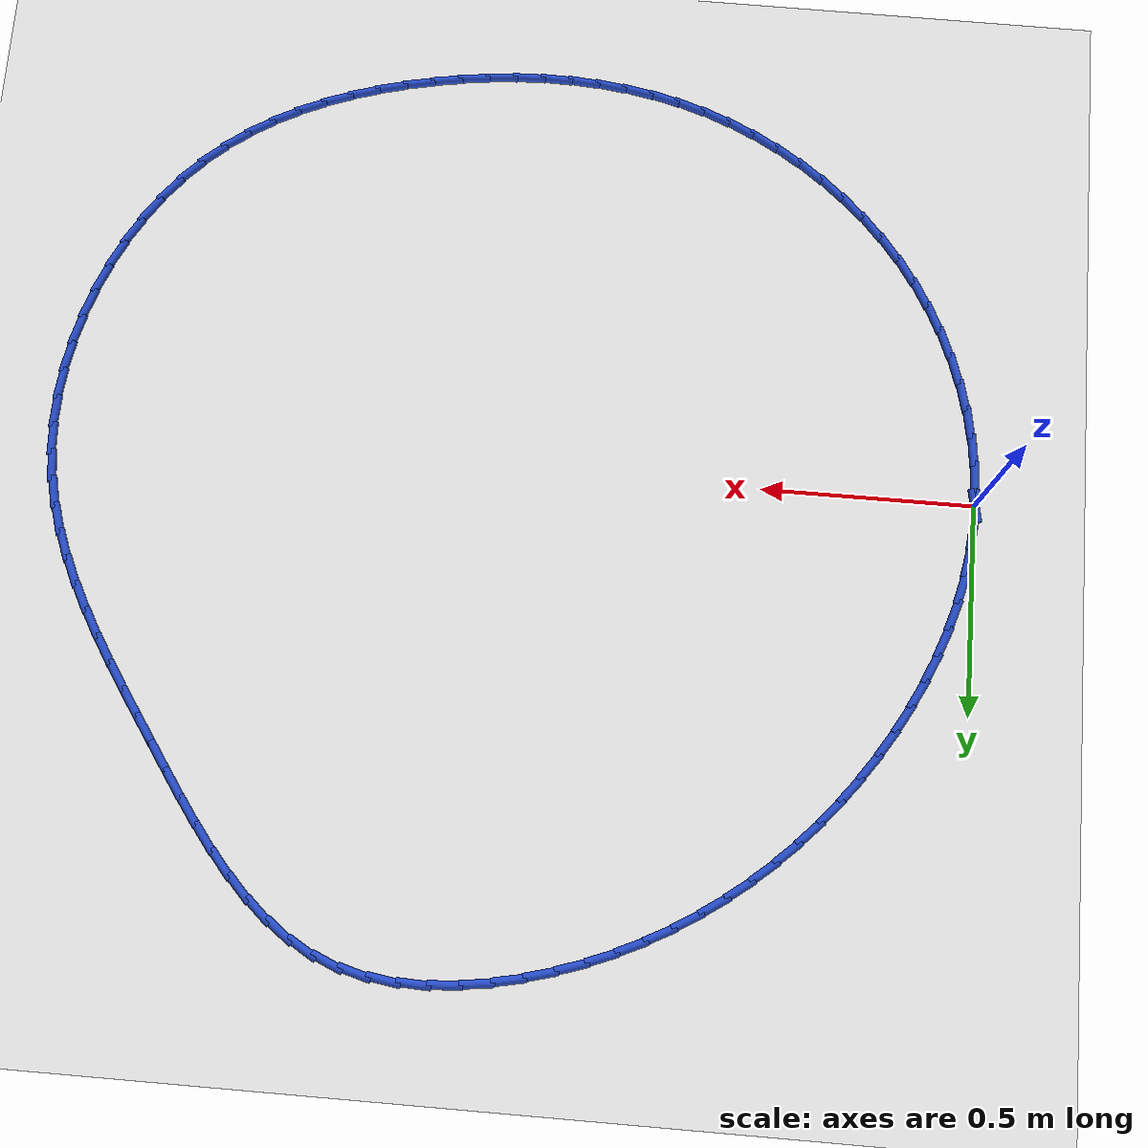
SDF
<sdf version="1.6">
 <world name="default">
  <light name="sun" type="directional">
   <pose>0 0 10 0 -0 0</pose>
   <diffuse>0.8 0.8 0.8 1</diffuse>
   <specular>0.2 0.2 0.2 1</specular>
   <attenuation>
    <range>1000</range>
    <constant>0.9</constant>
    <linear>0.01</linear>
    <quadratic>0.001</quadratic>
   </attenuation>
   <direction>-0.5 0.1 -0.9</direction>
  </light>
  <model name="ground_plane">
   <static>1</static>
   <link name="link">
    <collision name="collision">
     <geometry><plane><normal>0 0 1</normal><size>100 100</size></plane></geometry>
     <surface><friction><ode><mu>100</mu><mu2>50</mu2></ode></friction></surface>
    </collision>
    <visual name="visual">
     <cast_shadows>0</cast_shadows>
     <geometry><plane><normal>0 0 1</normal><size>100 100</size></plane></geometry>
     <material>
      <script><uri>file://media/materials/scripts/gazebo.material</uri><name>Gazebo/WhiteGlow</name></script>
     </material>
    </visual>
   </link>
  </model>
  <gravity>0 0 -9.8</gravity>
  <magnetic_field>6e-06 2.3e-05 -4.2e-05</magnetic_field>
  <atmosphere type="adiabatic"/>
  <physics name="default_physics" default="0" type="ode">
   <max_step_size>0.001</max_step_size>
   <real_time_factor>1</real_time_factor>
   <real_time_update_rate>1000</real_time_update_rate>
  </physics>
  <scene><ambient>0.4 0.4 0.4 1</ambient><background>0.7 0.7 0.7 1</background><shadows>1</shadows></scene>
  <spherical_coordinates>
   <surface_model>EARTH_WGS84</surface_model>
   <latitude_deg>0</latitude_deg>
   <longitude_deg>0</longitude_deg>
   <elevation>0</elevation>
   <heading_deg>0</heading_deg>
  </spherical_coordinates>
  <model name="line">
   <link name="link_0">
    <pose>4.163336342344337e-17 2.7755575615628914e-17 0.01 0 1.57 1.5192214932121693</pose>
    <collision name="collision">
     <geometry><cylinder><radius>0.01</radius><length>0.08</length></cylinder></geometry>
    </collision>
    <visual name="visual">
     <material>
      <script><name>Gazebo/Blue</name><uri>file://media/materials/scripts/gazebo.material</uri></script>
     </material>
     <geometry><cylinder><radius>0.01</radius><length>0.08</length></cylinder></geometry>
    </visual>
   </link>
   <link name="link_1">
    <pose>0.0034762063375712105 0.06734144069216903 0.01 0 1.57 1.4469908983931952</pose>
    <collision name="collision">
     <geometry><cylinder><radius>0.01</radius><length>0.08</length></cylinder></geometry>
    </collision>
    <visual name="visual">
     <material>
      <script><name>Gazebo/Blue</name><uri>file://media/materials/scripts/gazebo.material</uri></script>
     </material>
     <geometry><cylinder><radius>0.01</radius><length>0.08</length></cylinder></geometry>
    </visual>
   </link>
   <link name="link_2">
    <pose>0.011801521209621156 0.13424266820748448 0.01 0 1.57 1.3785168882773868</pose>
    <collision name="collision">
     <geometry><cylinder><radius>0.01</radius><length>0.08</length></cylinder></geometry>
    </collision>
    <visual name="visual">
     <material>
      <script><name>Gazebo/Blue</name><uri>file://media/materials/scripts/gazebo.material</uri></script>
     </material>
     <geometry><cylinder><radius>0.01</radius><length>0.08</length></cylinder></geometry>
    </visual>
   </link>
   <link name="link_3">
    <pose>0.02470611680292217 0.20052728369750927 0.01 0 1.57 1.3137665823519877</pose>
    <collision name="collision">
     <geometry><cylinder><radius>0.01</radius><length>0.08</length></cylinder></geometry>
    </collision>
    <visual name="visual">
     <material>
      <script><name>Gazebo/Blue</name><uri>file://media/materials/scripts/gazebo.material</uri></script>
     </material>
     <geometry><cylinder><radius>0.01</radius><length>0.08</length></cylinder></geometry>
    </visual>
   </link>
   <link name="link_4">
    <pose>0.041920165304246575 0.26601888831380677 0.01 0 1.57 1.2525890644805597</pose>
    <collision name="collision">
     <geometry><cylinder><radius>0.01</radius><length>0.08</length></cylinder></geometry>
    </collision>
    <visual name="visual">
     <material>
      <script><name>Gazebo/Blue</name><uri>file://media/materials/scripts/gazebo.material</uri></script>
     </material>
     <geometry><cylinder><radius>0.01</radius><length>0.08</length></cylinder></geometry>
    </visual>
   </link>
   <link name="link_5">
    <pose>0.06317383890036667 0.3305410832079398 0.01 0 1.57 1.1947469645104771</pose>
    <collision name="collision">
     <geometry><cylinder><radius>0.01</radius><length>0.08</length></cylinder></geometry>
    </collision>
    <visual name="visual">
     <material>
      <script><name>Gazebo/Blue</name><uri>file://media/materials/scripts/gazebo.material</uri></script>
     </material>
     <geometry><cylinder><radius>0.01</radius><length>0.08</length></cylinder></geometry>
    </visual>
   </link>
   <link name="link_6">
    <pose>0.08819730977805473 0.3939174695314717 0.01 0 1.57 1.1399433454438057</pose>
    <collision name="collision">
     <geometry><cylinder><radius>0.01</radius><length>0.08</length></cylinder></geometry>
    </collision>
    <visual name="visual">
     <material>
      <script><name>Gazebo/Blue</name><uri>file://media/materials/scripts/gazebo.material</uri></script>
     </material>
     <geometry><cylinder><radius>0.01</radius><length>0.08</length></cylinder></geometry>
    </visual>
   </link>
   <link name="link_7">
    <pose>0.11672075012408317 0.4559716484359657 0.01 0 1.57 1.087842598606835</pose>
    <collision name="collision">
     <geometry><cylinder><radius>0.01</radius><length>0.08</length></cylinder></geometry>
    </collision>
    <visual name="visual">
     <material>
      <script><name>Gazebo/Blue</name><uri>file://media/materials/scripts/gazebo.material</uri></script>
     </material>
     <geometry><cylinder><radius>0.01</radius><length>0.08</length></cylinder></geometry>
    </visual>
   </link>
   <link name="link_8">
    <pose>0.14847433212522418 0.5165272210729847 0.01 0 1.57 1.0380852814231114</pose>
    <collision name="collision">
     <geometry><cylinder><radius>0.01</radius><length>0.08</length></cylinder></geometry>
    </collision>
    <visual name="visual">
     <material>
      <script><name>Gazebo/Blue</name><uri>file://media/materials/scripts/gazebo.material</uri></script>
     </material>
     <geometry><cylinder><radius>0.01</radius><length>0.08</length></cylinder></geometry>
    </visual>
   </link>
   <link name="link_9">
    <pose>0.1831882279682501 0.5754077885940918 0.01 0 1.57 0.9901184920248248</pose>
    <collision name="collision">
     <geometry><cylinder><radius>0.01</radius><length>0.08</length></cylinder></geometry>
    </collision>
    <visual name="visual">
     <material>
      <script><name>Gazebo/Blue</name><uri>file://media/materials/scripts/gazebo.material</uri></script>
     </material>
     <geometry><cylinder><radius>0.01</radius><length>0.08</length></cylinder></geometry>
    </visual>
   </link>
   <link name="link_10">
    <pose>0.22061028343473135 0.6324416354173774 0.01 0 1.57 0.9422704575083368</pose>
    <collision name="collision">
     <geometry><cylinder><radius>0.01</radius><length>0.08</length></cylinder></geometry>
    </collision>
    <visual name="visual">
     <material>
      <script><name>Gazebo/Blue</name><uri>file://media/materials/scripts/gazebo.material</uri></script>
     </material>
     <geometry><cylinder><radius>0.01</radius><length>0.08</length></cylinder></geometry>
    </visual>
   </link>
   <link name="link_11">
    <pose>0.2606250873971751 0.6874932810533351 0.01 0 1.57 0.8938113492299037</pose>
    <collision name="collision">
     <geometry><cylinder><radius>0.01</radius><length>0.08</length></cylinder></geometry>
    </collision>
    <visual name="visual">
     <material>
      <script><name>Gazebo/Blue</name><uri>file://media/materials/scripts/gazebo.material</uri></script>
     </material>
     <geometry><cylinder><radius>0.01</radius><length>0.08</length></cylinder></geometry>
    </visual>
   </link>
   <link name="link_12">
    <pose>0.3031809986056713 0.7404441431781414 0.01 0 1.57 0.8446939364812358</pose>
    <collision name="collision">
     <geometry><cylinder><radius>0.01</radius><length>0.08</length></cylinder></geometry>
    </collision>
    <visual name="visual">
     <material>
      <script><name>Gazebo/Blue</name><uri>file://media/materials/scripts/gazebo.material</uri></script>
     </material>
     <geometry><cylinder><radius>0.01</radius><length>0.08</length></cylinder></geometry>
    </visual>
   </link>
   <link name="link_13">
    <pose>0.3482267337803214 0.791175734325245 0.01 0 1.57 0.7948844744198705</pose>
    <collision name="collision">
     <geometry><cylinder><radius>0.01</radius><length>0.08</length></cylinder></geometry>
    </collision>
    <visual name="visual">
     <material>
      <script><name>Gazebo/Blue</name><uri>file://media/materials/scripts/gazebo.material</uri></script>
     </material>
     <geometry><cylinder><radius>0.01</radius><length>0.08</length></cylinder></geometry>
    </visual>
   </link>
   <link name="link_14">
    <pose>0.3957110096412262 0.8395695670280936 0.01 0 1.57 0.7443609646239293</pose>
    <collision name="collision">
     <geometry><cylinder><radius>0.01</radius><length>0.08</length></cylinder></geometry>
    </collision>
    <visual name="visual">
     <material>
      <script><name>Gazebo/Blue</name><uri>file://media/materials/scripts/gazebo.material</uri></script>
     </material>
     <geometry><cylinder><radius>0.01</radius><length>0.08</length></cylinder></geometry>
    </visual>
   </link>
   <link name="link_15">
    <pose>0.4455825429084865 0.8855071538201349 0.01 0 1.57 0.6931150319555096</pose>
    <collision name="collision">
     <geometry><cylinder><radius>0.01</radius><length>0.08</length></cylinder></geometry>
    </collision>
    <visual name="visual">
     <material>
      <script><name>Gazebo/Blue</name><uri>file://media/materials/scripts/gazebo.material</uri></script>
     </material>
     <geometry><cylinder><radius>0.01</radius><length>0.08</length></cylinder></geometry>
    </visual>
   </link>
   <link name="link_16">
    <pose>0.4977900503022036 0.9288700072348176 0.01 0 1.57 0.6411537107322413</pose>
    <collision name="collision">
     <geometry><cylinder><radius>0.01</radius><length>0.08</length></cylinder></geometry>
    </collision>
    <visual name="visual">
     <material>
      <script><name>Gazebo/Blue</name><uri>file://media/materials/scripts/gazebo.material</uri></script>
     </material>
     <geometry><cylinder><radius>0.01</radius><length>0.08</length></cylinder></geometry>
    </visual>
   </link>
   <link name="link_17">
    <pose>0.5522822485424786 0.9695396398055895 0.01 0 1.57 0.5885010371077563</pose>
    <collision name="collision">
     <geometry><cylinder><radius>0.01</radius><length>0.08</length></cylinder></geometry>
    </collision>
    <visual name="visual">
     <material>
      <script><name>Gazebo/Blue</name><uri>file://media/materials/scripts/gazebo.material</uri></script>
     </material>
     <geometry><cylinder><radius>0.01</radius><length>0.08</length></cylinder></geometry>
    </visual>
   </link>
   <link name="link_18">
    <pose>0.609007854349412 1.007397564065898 0.01 0 1.57 0.5351993276121104</pose>
    <collision name="collision">
     <geometry><cylinder><radius>0.01</radius><length>0.08</length></cylinder></geometry>
    </collision>
    <visual name="visual">
     <material>
      <script><name>Gazebo/Blue</name><uri>file://media/materials/scripts/gazebo.material</uri></script>
     </material>
     <geometry><cylinder><radius>0.01</radius><length>0.08</length></cylinder></geometry>
    </visual>
   </link>
   <link name="link_19">
    <pose>0.6679155844431053 1.042325292549192 0.01 0 1.57 0.4813100142860776</pose>
    <collision name="collision">
     <geometry><cylinder><radius>0.01</radius><length>0.08</length></cylinder></geometry>
    </collision>
    <visual name="visual">
     <material>
      <script><name>Gazebo/Blue</name><uri>file://media/materials/scripts/gazebo.material</uri></script>
     </material>
     <geometry><cylinder><radius>0.01</radius><length>0.08</length></cylinder></geometry>
    </visual>
   </link>
   <link name="link_20">
    <pose>0.7289541555436594 1.074204337788919 0.01 0 1.57 0.42691390855210354</pose>
    <collision name="collision">
     <geometry><cylinder><radius>0.01</radius><length>0.08</length></cylinder></geometry>
    </collision>
    <visual name="visual">
     <material>
      <script><name>Gazebo/Blue</name><uri>file://media/materials/scripts/gazebo.material</uri></script>
     </material>
     <geometry><cylinder><radius>0.01</radius><length>0.08</length></cylinder></geometry>
    </visual>
   </link>
   <link name="link_21">
    <pose>0.7920722843711752 1.102916212318527 0.01 0 1.57 0.37211078216397037</pose>
    <collision name="collision">
     <geometry><cylinder><radius>0.01</radius><length>0.08</length></cylinder></geometry>
    </collision>
    <visual name="visual">
     <material>
      <script><name>Gazebo/Blue</name><uri>file://media/materials/scripts/gazebo.material</uri></script>
     </material>
     <geometry><cylinder><radius>0.01</radius><length>0.08</length></cylinder></geometry>
    </visual>
   </link>
   <link name="link_22">
    <pose>0.8572186876457537 1.128342428671464 0.01 0 1.57 0.3169302670167695</pose>
    <collision name="collision">
     <geometry><cylinder><radius>0.01</radius><length>0.08</length></cylinder></geometry>
    </collision>
    <visual name="visual">
     <material>
      <script><name>Gazebo/Blue</name><uri>file://media/materials/scripts/gazebo.material</uri></script>
     </material>
     <geometry><cylinder><radius>0.01</radius><length>0.08</length></cylinder></geometry>
    </visual>
   </link>
   <link name="link_23">
    <pose>0.9243246784899151 1.1503522547838358 0.01 0 1.57 0.2593788679658928</pose>
    <collision name="collision">
     <geometry><cylinder><radius>0.01</radius><length>0.08</length></cylinder></geometry>
    </collision>
    <visual name="visual">
     <material>
      <script><name>Gazebo/Blue</name><uri>file://media/materials/scripts/gazebo.material</uri></script>
     </material>
     <geometry><cylinder><radius>0.01</radius><length>0.08</length></cylinder></geometry>
    </visual>
   </link>
   <link name="link_24">
    <pose>0.9929703100983723 1.1685678236899824 0.01 0 1.57 0.19637360672037146</pose>
    <collision name="collision">
     <geometry><cylinder><radius>0.01</radius><length>0.08</length></cylinder></geometry>
    </collision>
    <visual name="visual">
     <material>
      <script><name>Gazebo/Blue</name><uri>file://media/materials/scripts/gazebo.material</uri></script>
     </material>
     <geometry><cylinder><radius>0.01</radius><length>0.08</length></cylinder></geometry>
    </visual>
   </link>
   <link name="link_25">
    <pose>1.0624096277372475 1.1823818999963953 0.01 0 1.57 0.1259465805454226</pose>
    <collision name="collision">
     <geometry><cylinder><radius>0.01</radius><length>0.08</length></cylinder></geometry>
    </collision>
    <visual name="visual">
     <material>
      <script><name>Gazebo/Blue</name><uri>file://media/materials/scripts/gazebo.material</uri></script>
     </material>
     <geometry><cylinder><radius>0.01</radius><length>0.08</length></cylinder></geometry>
    </visual>
   </link>
   <link name="link_26">
    <pose>1.1318843322884558 1.1911785632079168 0.01 0 1.57 0.04597844054026749</pose>
    <collision name="collision">
     <geometry><cylinder><radius>0.01</radius><length>0.08</length></cylinder></geometry>
    </collision>
    <visual name="visual">
     <material>
      <script><name>Gazebo/Blue</name><uri>file://media/materials/scripts/gazebo.material</uri></script>
     </material>
     <geometry><cylinder><radius>0.01</radius><length>0.08</length></cylinder></geometry>
    </visual>
   </link>
   <link name="link_27">
    <pose>1.200636124633913 1.1943418928293907 0.01 0 1.57 -0.04584117623134676</pose>
    <collision name="collision">
     <geometry><cylinder><radius>0.01</radius><length>0.08</length></cylinder></geometry>
    </collision>
    <visual name="visual">
     <material>
      <script><name>Gazebo/Blue</name><uri>file://media/materials/scripts/gazebo.material</uri></script>
     </material>
     <geometry><cylinder><radius>0.01</radius><length>0.08</length></cylinder></geometry>
    </visual>
   </link>
   <link name="link_28">
    <pose>1.2679067056555349 1.1912559683656592 0.01 0 1.57 -0.1518428468250079</pose>
    <collision name="collision">
     <geometry><cylinder><radius>0.01</radius><length>0.08</length></cylinder></geometry>
    </collision>
    <visual name="visual">
     <material>
      <script><name>Gazebo/Blue</name><uri>file://media/materials/scripts/gazebo.material</uri></script>
     </material>
     <geometry><cylinder><radius>0.01</radius><length>0.08</length></cylinder></geometry>
    </visual>
   </link>
   <link name="link_29">
    <pose>1.3329377762352361 1.181304869321565 0.01 0 1.57 -0.273948428059258</pose>
    <collision name="collision">
     <geometry><cylinder><radius>0.01</radius><length>0.08</length></cylinder></geometry>
    </collision>
    <visual name="visual">
     <material>
      <script><name>Gazebo/Blue</name><uri>file://media/materials/scripts/gazebo.material</uri></script>
     </material>
     <geometry><cylinder><radius>0.01</radius><length>0.08</length></cylinder></geometry>
    </visual>
   </link>
   <link name="link_30">
    <pose>1.3949710372549338 1.163872675201952 0.01 0 1.57 -0.4106928057369954</pose>
    <collision name="collision">
     <geometry><cylinder><radius>0.01</radius><length>0.08</length></cylinder></geometry>
    </collision>
    <visual name="visual">
     <material>
      <script><name>Gazebo/Blue</name><uri>file://media/materials/scripts/gazebo.material</uri></script>
     </material>
     <geometry><cylinder><radius>0.01</radius><length>0.08</length></cylinder></geometry>
    </visual>
   </link>
   <link name="link_31">
    <pose>1.4533336957739507 1.1384583560013144 0.01 0 1.57 -0.5415901640745504</pose>
    <collision name="collision">
     <geometry><cylinder><radius>0.01</radius><length>0.08</length></cylinder></geometry>
    </collision>
    <visual name="visual">
     <material>
      <script><name>Gazebo/Blue</name><uri>file://media/materials/scripts/gazebo.material</uri></script>
     </material>
     <geometry><cylinder><radius>0.01</radius><length>0.08</length></cylinder></geometry>
    </visual>
   </link>
   <link name="link_32">
    <pose>1.5080725864807558 1.105527810340662 0.01 0 1.57 -0.6540366710641569</pose>
    <collision name="collision">
     <geometry><cylinder><radius>0.01</radius><length>0.08</length></cylinder></geometry>
    </collision>
    <visual name="visual">
     <material>
      <script><name>Gazebo/Blue</name><uri>file://media/materials/scripts/gazebo.material</uri></script>
     </material>
     <geometry><cylinder><radius>0.01</radius><length>0.08</length></cylinder></geometry>
    </visual>
   </link>
   <link name="link_33">
    <pose>1.5595949036516423 1.0660311344832223 0.01 0 1.57 -0.7469780959425363</pose>
    <collision name="collision">
     <geometry><cylinder><radius>0.01</radius><length>0.08</length></cylinder></geometry>
    </collision>
    <visual name="visual">
     <material>
      <script><name>Gazebo/Blue</name><uri>file://media/materials/scripts/gazebo.material</uri></script>
     </material>
     <geometry><cylinder><radius>0.01</radius><length>0.08</length></cylinder></geometry>
    </visual>
   </link>
   <link name="link_34">
    <pose>1.6083105291711677 1.020922035900662 0.01 0 1.57 -0.8212774317282154</pose>
    <collision name="collision">
     <geometry><cylinder><radius>0.01</radius><length>0.08</length></cylinder></geometry>
    </collision>
    <visual name="visual">
     <material>
      <script><name>Gazebo/Blue</name><uri>file://media/materials/scripts/gazebo.material</uri></script>
     </material>
     <geometry><cylinder><radius>0.01</radius><length>0.08</length></cylinder></geometry>
    </visual>
   </link>
   <link name="link_35">
    <pose>1.6546293449238885 0.971154222064647 0.01 0 1.57 -0.8785885337762485</pose>
    <collision name="collision">
     <geometry><cylinder><radius>0.01</radius><length>0.08</length></cylinder></geometry>
    </collision>
    <visual name="visual">
     <material>
      <script><name>Gazebo/Blue</name><uri>file://media/materials/scripts/gazebo.material</uri></script>
     </material>
     <geometry><cylinder><radius>0.01</radius><length>0.08</length></cylinder></geometry>
    </visual>
   </link>
   <link name="link_36">
    <pose>1.6989612327943602 0.9176814004468427 0.01 0 1.57 -0.9206496170783781</pose>
    <collision name="collision">
     <geometry><cylinder><radius>0.01</radius><length>0.08</length></cylinder></geometry>
    </collision>
    <visual name="visual">
     <material>
      <script><name>Gazebo/Blue</name><uri>file://media/materials/scripts/gazebo.material</uri></script>
     </material>
     <geometry><cylinder><radius>0.01</radius><length>0.08</length></cylinder></geometry>
    </visual>
   </link>
   <link name="link_37">
    <pose>1.7417160746671414 0.861457278518915 0.01 0 1.57 -0.9489099977662756</pose>
    <collision name="collision">
     <geometry><cylinder><radius>0.01</radius><length>0.08</length></cylinder></geometry>
    </collision>
    <visual name="visual">
     <material>
      <script><name>Gazebo/Blue</name><uri>file://media/materials/scripts/gazebo.material</uri></script>
     </material>
     <geometry><cylinder><radius>0.01</radius><length>0.08</length></cylinder></geometry>
    </visual>
   </link>
   <link name="link_38">
    <pose>1.7833037524267887 0.8034355637525301 0.01 0 1.57 -0.9643646524555162</pose>
    <collision name="collision">
     <geometry><cylinder><radius>0.01</radius><length>0.08</length></cylinder></geometry>
    </collision>
    <visual name="visual">
     <material>
      <script><name>Gazebo/Blue</name><uri>file://media/materials/scripts/gazebo.material</uri></script>
     </material>
     <geometry><cylinder><radius>0.01</radius><length>0.08</length></cylinder></geometry>
    </visual>
   </link>
   <link name="link_39">
    <pose>1.8241341479578583 0.7445699636193536 0.01 0 1.57 -0.9679673985216547</pose>
    <collision name="collision">
     <geometry><cylinder><radius>0.01</radius><length>0.08</length></cylinder></geometry>
    </collision>
    <visual name="visual">
     <material>
      <script><name>Gazebo/Blue</name><uri>file://media/materials/scripts/gazebo.material</uri></script>
     </material>
     <geometry><cylinder><radius>0.01</radius><length>0.08</length></cylinder></geometry>
    </visual>
   </link>
   <link name="link_40">
    <pose>1.8645951470085866 0.6857858218756122 0.01 0 1.57 -0.9695940270129074</pose>
    <collision name="collision">
     <geometry><cylinder><radius>0.01</radius><length>0.08</length></cylinder></geometry>
    </collision>
    <visual name="visual">
     <material>
      <script><name>Gazebo/Blue</name><uri>file://media/materials/scripts/gazebo.material</uri></script>
     </material>
     <geometry><cylinder><radius>0.01</radius><length>0.08</length></cylinder></geometry>
    </visual>
   </link>
   <link name="link_41">
    <pose>1.904623673407721 0.6274269730810258 0.01 0 1.57 -0.9785860817242656</pose>
    <collision name="collision">
     <geometry><cylinder><radius>0.01</radius><length>0.08</length></cylinder></geometry>
    </collision>
    <visual name="visual">
     <material>
      <script><name>Gazebo/Blue</name><uri>file://media/materials/scripts/gazebo.material</uri></script>
     </material>
     <geometry><cylinder><radius>0.01</radius><length>0.08</length></cylinder></geometry>
    </visual>
   </link>
   <link name="link_42">
    <pose>1.943734255786978 0.5692925789947492 0.01 0 1.57 -0.9955678304701611</pose>
    <collision name="collision">
     <geometry><cylinder><radius>0.01</radius><length>0.08</length></cylinder></geometry>
    </collision>
    <visual name="visual">
     <material>
      <script><name>Gazebo/Blue</name><uri>file://media/materials/scripts/gazebo.material</uri></script>
     </material>
     <geometry><cylinder><radius>0.01</radius><length>0.08</length></cylinder></geometry>
    </visual>
   </link>
   <link name="link_43">
    <pose>1.9814251476575622 0.511160814831748 0.01 0 1.57 -1.0208688505107437</pose>
    <collision name="collision">
     <geometry><cylinder><radius>0.01</radius><length>0.08</length></cylinder></geometry>
    </collision>
    <visual name="visual">
     <material>
      <script><name>Gazebo/Blue</name><uri>file://media/materials/scripts/gazebo.material</uri></script>
     </material>
     <geometry><cylinder><radius>0.01</radius><length>0.08</length></cylinder></geometry>
    </visual>
   </link>
   <link name="link_44">
    <pose>2.0171946025306777 0.45280985580698807 0.01 0 1.57 -1.0548506464172729</pose>
    <collision name="collision">
     <geometry><cylinder><radius>0.01</radius><length>0.08</length></cylinder></geometry>
    </collision>
    <visual name="visual">
     <material>
      <script><name>Gazebo/Blue</name><uri>file://media/materials/scripts/gazebo.material</uri></script>
     </material>
     <geometry><cylinder><radius>0.01</radius><length>0.08</length></cylinder></geometry>
    </visual>
   </link>
   <link name="link_45">
    <pose>2.0505408739175315 0.39401787713543523 0.01 0 1.57 -1.0978551358970983</pose>
    <collision name="collision">
     <geometry><cylinder><radius>0.01</radius><length>0.08</length></cylinder></geometry>
    </collision>
    <visual name="visual">
     <material>
      <script><name>Gazebo/Blue</name><uri>file://media/materials/scripts/gazebo.material</uri></script>
     </material>
     <geometry><cylinder><radius>0.01</radius><length>0.08</length></cylinder></geometry>
    </visual>
   </link>
   <link name="link_46">
    <pose>2.080962215329327 0.3345630540320552 0.01 0 1.57 -1.1501235661917237</pose>
    <collision name="collision">
     <geometry><cylinder><radius>0.01</radius><length>0.08</length></cylinder></geometry>
    </collision>
    <visual name="visual">
     <material>
      <script><name>Gazebo/Blue</name><uri>file://media/materials/scripts/gazebo.material</uri></script>
     </material>
     <geometry><cylinder><radius>0.01</radius><length>0.08</length></cylinder></geometry>
    </visual>
   </link>
   <link name="link_47">
    <pose>2.1079568802772704 0.2742235617118141 0.01 0 1.57 -1.2116833091327703</pose>
    <collision name="collision">
     <geometry><cylinder><radius>0.01</radius><length>0.08</length></cylinder></geometry>
    </collision>
    <visual name="visual">
     <material>
      <script><name>Gazebo/Blue</name><uri>file://media/materials/scripts/gazebo.material</uri></script>
     </material>
     <geometry><cylinder><radius>0.01</radius><length>0.08</length></cylinder></geometry>
    </visual>
   </link>
   <link name="link_48">
    <pose>2.1310231222725653 0.21277757538967793 0.01 0 1.57 -1.2822096862834216</pose>
    <collision name="collision">
     <geometry><cylinder><radius>0.01</radius><length>0.08</length></cylinder></geometry>
    </collision>
    <visual name="visual">
     <material>
      <script><name>Gazebo/Blue</name><uri>file://media/materials/scripts/gazebo.material</uri></script>
     </material>
     <geometry><cylinder><radius>0.01</radius><length>0.08</length></cylinder></geometry>
    </visual>
   </link>
   <link name="link_49">
    <pose>2.149659194826418 0.15000327028061172 0.01 0 1.57 -1.3608872416094286</pose>
    <collision name="collision">
     <geometry><cylinder><radius>0.01</radius><length>0.08</length></cylinder></geometry>
    </collision>
    <visual name="visual">
     <material>
      <script><name>Gazebo/Blue</name><uri>file://media/materials/scripts/gazebo.material</uri></script>
     </material>
     <geometry><cylinder><radius>0.01</radius><length>0.08</length></cylinder></geometry>
    </visual>
   </link>
   <link name="link_50">
    <pose>2.1633633514500343 0.08567882159958196 0.01 0 1.57 -1.4458407285895667</pose>
    <collision name="collision">
     <geometry><cylinder><radius>0.01</radius><length>0.08</length></cylinder></geometry>
    </collision>
    <visual name="visual">
     <material>
      <script><name>Gazebo/Blue</name><uri>file://media/materials/scripts/gazebo.material</uri></script>
     </material>
     <geometry><cylinder><radius>0.01</radius><length>0.08</length></cylinder></geometry>
    </visual>
   </link>
   <link name="link_51">
    <pose>2.171661622746505 0.019615060332411914 0.01 0 1.57 -1.5296422005148573</pose>
    <collision name="collision">
     <geometry><cylinder><radius>0.01</radius><length>0.08</length></cylinder></geometry>
    </collision>
    <visual name="visual">
     <material>
      <script><name>Gazebo/Blue</name><uri>file://media/materials/scripts/gazebo.material</uri></script>
     </material>
     <geometry><cylinder><radius>0.01</radius><length>0.08</length></cylinder></geometry>
    </visual>
   </link>
   <link name="link_52">
    <pose>2.1744437574184294 -0.047949582159829085 0.01 0 1.57 1.5330385433633409</pose>
    <collision name="collision">
     <geometry><cylinder><radius>0.01</radius><length>0.08</length></cylinder></geometry>
    </collision>
    <visual name="visual">
     <material>
      <script><name>Gazebo/Blue</name><uri>file://media/materials/scripts/gazebo.material</uri></script>
     </material>
     <geometry><cylinder><radius>0.01</radius><length>0.08</length></cylinder></geometry>
    </visual>
   </link>
   <link name="link_53">
    <pose>2.171855115114412 -0.11647616888663692 0.01 0 1.57 1.4580136806385744</pose>
    <collision name="collision">
     <geometry><cylinder><radius>0.01</radius><length>0.08</length></cylinder></geometry>
    </collision>
    <visual name="visual">
     <material>
      <script><name>Gazebo/Blue</name><uri>file://media/materials/scripts/gazebo.material</uri></script>
     </material>
     <geometry><cylinder><radius>0.01</radius><length>0.08</length></cylinder></geometry>
    </visual>
   </link>
   <link name="link_54">
    <pose>2.1640463643456394 -0.185419521563397 0.01 0 1.57 1.385793887520046</pose>
    <collision name="collision">
     <geometry><cylinder><radius>0.01</radius><length>0.08</length></cylinder></geometry>
    </collision>
    <visual name="visual">
     <material>
      <script><name>Gazebo/Blue</name><uri>file://media/materials/scripts/gazebo.material</uri></script>
     </material>
     <geometry><cylinder><radius>0.01</radius><length>0.08</length></cylinder></geometry>
    </visual>
   </link>
   <link name="link_55">
    <pose>2.1511681736232977 -0.2542344619054948 0.01 0 1.57 1.3153259899441119</pose>
    <collision name="collision">
     <geometry><cylinder><radius>0.01</radius><length>0.08</length></cylinder></geometry>
    </collision>
    <visual name="visual">
     <material>
      <script><name>Gazebo/Blue</name><uri>file://media/materials/scripts/gazebo.material</uri></script>
     </material>
     <geometry><cylinder><radius>0.01</radius><length>0.08</length></cylinder></geometry>
    </visual>
   </link>
   <link name="link_56">
    <pose>2.1333712114585746 -0.3223758116283159 0.01 0 1.57 1.2455863102838287</pose>
    <collision name="collision">
     <geometry><cylinder><radius>0.01</radius><length>0.08</length></cylinder></geometry>
    </collision>
    <visual name="visual">
     <material>
      <script><name>Gazebo/Blue</name><uri>file://media/materials/scripts/gazebo.material</uri></script>
     </material>
     <geometry><cylinder><radius>0.01</radius><length>0.08</length></cylinder></geometry>
    </visual>
   </link>
   <link name="link_57">
    <pose>2.1108061463626564 -0.38929839244724573 0.01 0 1.57 1.1755728481358751</pose>
    <collision name="collision">
     <geometry><cylinder><radius>0.01</radius><length>0.08</length></cylinder></geometry>
    </collision>
    <visual name="visual">
     <material>
      <script><name>Gazebo/Blue</name><uri>file://media/materials/scripts/gazebo.material</uri></script>
     </material>
     <geometry><cylinder><radius>0.01</radius><length>0.08</length></cylinder></geometry>
    </visual>
   </link>
   <link name="link_58">
    <pose>2.0836236468467293 -0.45445702607766886 0.01 0 1.57 1.1042950388828199</pose>
    <collision name="collision">
     <geometry><cylinder><radius>0.01</radius><length>0.08</length></cylinder></geometry>
    </collision>
    <visual name="visual">
     <material>
      <script><name>Gazebo/Blue</name><uri>file://media/materials/scripts/gazebo.material</uri></script>
     </material>
     <geometry><cylinder><radius>0.01</radius><length>0.08</length></cylinder></geometry>
    </visual>
   </link>
   <link name="link_59">
    <pose>2.05197438142198 -0.5173065342349725 0.01 0 1.57 1.0307661619916932</pose>
    <collision name="collision">
     <geometry><cylinder><radius>0.01</radius><length>0.08</length></cylinder></geometry>
    </collision>
    <visual name="visual">
     <material>
      <script><name>Gazebo/Blue</name><uri>file://media/materials/scripts/gazebo.material</uri></script>
     </material>
     <geometry><cylinder><radius>0.01</radius><length>0.08</length></cylinder></geometry>
    </visual>
   </link>
   <link name="link_60">
    <pose>2.0160090185995956 -0.5773017386345413 0.01 0 1.57 0.9540035743801606</pose>
    <collision name="collision">
     <geometry><cylinder><radius>0.01</radius><length>0.08</length></cylinder></geometry>
    </collision>
    <visual name="visual">
     <material>
      <script><name>Gazebo/Blue</name><uri>file://media/materials/scripts/gazebo.material</uri></script>
     </material>
     <geometry><cylinder><radius>0.01</radius><length>0.08</length></cylinder></geometry>
    </visual>
   </link>
   <link name="link_61">
    <pose>1.9758782268907622 -0.6338974609917606 0.01 0 1.57 0.8730429657348762</pose>
    <collision name="collision">
     <geometry><cylinder><radius>0.01</radius><length>0.08</length></cylinder></geometry>
    </collision>
    <visual name="visual">
     <material>
      <script><name>Gazebo/Blue</name><uri>file://media/materials/scripts/gazebo.material</uri></script>
     </material>
     <geometry><cylinder><radius>0.01</radius><length>0.08</length></cylinder></geometry>
    </visual>
   </link>
   <link name="link_62">
    <pose>1.9317326748066668 -0.6865485230220161 0.01 0 1.57 0.7870238997659268</pose>
    <collision name="collision">
     <geometry><cylinder><radius>0.01</radius><length>0.08</length></cylinder></geometry>
    </collision>
    <visual name="visual">
     <material>
      <script><name>Gazebo/Blue</name><uri>file://media/materials/scripts/gazebo.material</uri></script>
     </material>
     <geometry><cylinder><radius>0.01</radius><length>0.08</length></cylinder></geometry>
    </visual>
   </link>
   <link name="link_63">
    <pose>1.8837240748151884 -0.7347134759939808 0.01 0 1.57 0.6990610321739491</pose>
    <collision name="collision">
     <geometry><cylinder><radius>0.01</radius><length>0.08</length></cylinder></geometry>
    </collision>
    <visual name="visual">
     <material>
      <script><name>Gazebo/Blue</name><uri>file://media/materials/scripts/gazebo.material</uri></script>
     </material>
     <geometry><cylinder><radius>0.01</radius><length>0.08</length></cylinder></geometry>
    </visual>
   </link>
   <link name="link_64">
    <pose>1.8320818050911032 -0.778128333253582 0.01 0 1.57 0.6158802825278833</pose>
    <collision name="collision">
     <geometry><cylinder><radius>0.01</radius><length>0.08</length></cylinder></geometry>
    </collision>
    <visual name="visual">
     <material>
      <script><name>Gazebo/Blue</name><uri>file://media/materials/scripts/gazebo.material</uri></script>
     </material>
     <geometry><cylinder><radius>0.01</radius><length>0.08</length></cylinder></geometry>
    </visual>
   </link>
   <link name="link_65">
    <pose>1.777165168417324 -0.8169932660498951 0.01 0 1.57 0.5387363251504195</pose>
    <collision name="collision">
     <geometry><cylinder><radius>0.01</radius><length>0.08</length></cylinder></geometry>
    </collision>
    <visual name="visual">
     <material>
      <script><name>Gazebo/Blue</name><uri>file://media/materials/scripts/gazebo.material</uri></script>
     </material>
     <geometry><cylinder><radius>0.01</radius><length>0.08</length></cylinder></geometry>
    </visual>
   </link>
   <link name="link_66">
    <pose>1.7193458387781746 -0.8515526419623839 0.01 0 1.57 0.46792026398627085</pose>
    <collision name="collision">
     <geometry><cylinder><radius>0.01</radius><length>0.08</length></cylinder></geometry>
    </collision>
    <visual name="visual">
     <material>
      <script><name>Gazebo/Blue</name><uri>file://media/materials/scripts/gazebo.material</uri></script>
     </material>
     <geometry><cylinder><radius>0.01</radius><length>0.08</length></cylinder></geometry>
    </visual>
   </link>
   <link name="link_67">
    <pose>1.6589954901579798 -0.8820508285705121 0.01 0 1.57 0.40342442038857684</pose>
    <collision name="collision">
     <geometry><cylinder><radius>0.01</radius><length>0.08</length></cylinder></geometry>
    </collision>
    <visual name="visual">
     <material>
      <script><name>Gazebo/Blue</name><uri>file://media/materials/scripts/gazebo.material</uri></script>
     </material>
     <geometry><cylinder><radius>0.01</radius><length>0.08</length></cylinder></geometry>
    </visual>
   </link>
   <link name="link_68">
    <pose>1.5964857965410624 -0.908732193453743 0.01 0 1.57 0.3450303488895591</pose>
    <collision name="collision">
     <geometry><cylinder><radius>0.01</radius><length>0.08</length></cylinder></geometry>
    </collision>
    <visual name="visual">
     <material>
      <script><name>Gazebo/Blue</name><uri>file://media/materials/scripts/gazebo.material</uri></script>
     </material>
     <geometry><cylinder><radius>0.01</radius><length>0.08</length></cylinder></geometry>
    </visual>
   </link>
   <link name="link_69">
    <pose>1.5321884319117467 -0.9318411041915395 0.01 0 1.57 0.2923893539346081</pose>
    <collision name="collision">
     <geometry><cylinder><radius>0.01</radius><length>0.08</length></cylinder></geometry>
    </collision>
    <visual name="visual">
     <material>
      <script><name>Gazebo/Blue</name><uri>file://media/materials/scripts/gazebo.material</uri></script>
     </material>
     <geometry><cylinder><radius>0.01</radius><length>0.08</length></cylinder></geometry>
    </visual>
   </link>
   <link name="link_70">
    <pose>1.4664750702543579 -0.9516219283633662 0.01 0 1.57 0.24508699243141305</pose>
    <collision name="collision">
     <geometry><cylinder><radius>0.01</radius><length>0.08</length></cylinder></geometry>
    </collision>
    <visual name="visual">
     <material>
      <script><name>Gazebo/Blue</name><uri>file://media/materials/scripts/gazebo.material</uri></script>
     </material>
     <geometry><cylinder><radius>0.01</radius><length>0.08</length></cylinder></geometry>
    </visual>
   </link>
   <link name="link_71">
    <pose>1.3997173855532197 -0.968319033548686 0.01 0 1.57 0.20262454944317929</pose>
    <collision name="collision">
     <geometry><cylinder><radius>0.01</radius><length>0.08</length></cylinder></geometry>
    </collision>
    <visual name="visual">
     <material>
      <script><name>Gazebo/Blue</name><uri>file://media/materials/scripts/gazebo.material</uri></script>
     </material>
     <geometry><cylinder><radius>0.01</radius><length>0.08</length></cylinder></geometry>
    </visual>
   </link>
   <link name="link_72">
    <pose>1.3322849371051315 -0.9821726182052394 0.01 0 1.57 0.16195856584226756</pose>
    <collision name="collision">
     <geometry><cylinder><radius>0.01</radius><length>0.08</length></cylinder></geometry>
    </collision>
    <visual name="visual">
     <material>
      <script><name>Gazebo/Blue</name><uri>file://media/materials/scripts/gazebo.material</uri></script>
     </material>
     <geometry><cylinder><radius>0.01</radius><length>0.08</length></cylinder></geometry>
    </visual>
   </link>
   <link name="link_73">
    <pose>1.2644617392372741 -0.9932542282654535 0.01 0 1.57 0.1193282206684412</pose>
    <collision name="collision">
     <geometry><cylinder><radius>0.01</radius><length>0.08</length></cylinder></geometry>
    </collision>
    <visual name="visual">
     <material>
      <script><name>Gazebo/Blue</name><uri>file://media/materials/scripts/gazebo.material</uri></script>
     </material>
     <geometry><cylinder><radius>0.01</radius><length>0.08</length></cylinder></geometry>
    </visual>
   </link>
   <link name="link_74">
    <pose>1.1964187106466557 -1.001412440810224 0.01 0 1.57 0.07428473014636458</pose>
    <collision name="collision">
     <geometry><cylinder><radius>0.01</radius><length>0.08</length></cylinder></geometry>
    </collision>
    <visual name="visual">
     <material>
      <script><name>Gazebo/Blue</name><uri>file://media/materials/scripts/gazebo.material</uri></script>
     </material>
     <geometry><cylinder><radius>0.01</radius><length>0.08</length></cylinder></geometry>
    </visual>
   </link>
   <link name="link_75">
    <pose>1.1283190102196936 -1.006480534397835 0.01 0 1.57 0.026632436473692768</pose>
    <collision name="collision">
     <geometry><cylinder><radius>0.01</radius><length>0.08</length></cylinder></geometry>
    </collision>
    <visual name="visual">
     <material>
      <script><name>Gazebo/Blue</name><uri>file://media/materials/scripts/gazebo.material</uri></script>
     </material>
     <geometry><cylinder><radius>0.01</radius><length>0.08</length></cylinder></geometry>
    </visual>
   </link>
   <link name="link_76">
    <pose>1.0603257968428061 -1.0082917875865702 0.01 0 1.57 -0.023802705715117622</pose>
    <collision name="collision">
     <geometry><cylinder><radius>0.01</radius><length>0.08</length></cylinder></geometry>
    </collision>
    <visual name="visual">
     <material>
      <script><name>Gazebo/Blue</name><uri>file://media/materials/scripts/gazebo.material</uri></script>
     </material>
     <geometry><cylinder><radius>0.01</radius><length>0.08</length></cylinder></geometry>
    </visual>
   </link>
   <link name="link_77">
    <pose>0.9926022294024098 -1.0066794789347144 0.01 0 1.57 -0.07716159505019228</pose>
    <collision name="collision">
     <geometry><cylinder><radius>0.01</radius><length>0.08</length></cylinder></geometry>
    </collision>
    <visual name="visual">
     <material>
      <script><name>Gazebo/Blue</name><uri>file://media/materials/scripts/gazebo.material</uri></script>
     </material>
     <geometry><cylinder><radius>0.01</radius><length>0.08</length></cylinder></geometry>
    </visual>
   </link>
   <link name="link_78">
    <pose>0.9253114667849234 -1.0014768870005515 0.01 0 1.57 -0.13353779481218842</pose>
    <collision name="collision">
     <geometry><cylinder><radius>0.01</radius><length>0.08</length></cylinder></geometry>
    </collision>
    <visual name="visual">
     <material>
      <script><name>Gazebo/Blue</name><uri>file://media/materials/scripts/gazebo.material</uri></script>
     </material>
     <geometry><cylinder><radius>0.01</radius><length>0.08</length></cylinder></geometry>
    </visual>
   </link>
   <link name="link_79">
    <pose>0.8586166678767642 -0.9925172903423657 0.01 0 1.57 -0.19296116973424082</pose>
    <collision name="collision">
     <geometry><cylinder><radius>0.01</radius><length>0.08</length></cylinder></geometry>
    </collision>
    <visual name="visual">
     <material>
      <script><name>Gazebo/Blue</name><uri>file://media/materials/scripts/gazebo.material</uri></script>
     </material>
     <geometry><cylinder><radius>0.01</radius><length>0.08</length></cylinder></geometry>
    </visual>
   </link>
   <link name="link_80">
    <pose>0.7926809915643498 -0.9796339675184412 0.01 0 1.57 -0.255380462684608</pose>
    <collision name="collision">
     <geometry><cylinder><radius>0.01</radius><length>0.08</length></cylinder></geometry>
    </collision>
    <visual name="visual">
     <material>
      <script><name>Gazebo/Blue</name><uri>file://media/materials/scripts/gazebo.material</uri></script>
     </material>
     <geometry><cylinder><radius>0.01</radius><length>0.08</length></cylinder></geometry>
    </visual>
   </link>
   <link name="link_81">
    <pose>0.7276675967340983 -0.9626601970870626 0.01 0 1.57 -0.32059571940213005</pose>
    <collision name="collision">
     <geometry><cylinder><radius>0.01</radius><length>0.08</length></cylinder></geometry>
    </collision>
    <visual name="visual">
     <material>
      <script><name>Gazebo/Blue</name><uri>file://media/materials/scripts/gazebo.material</uri></script>
     </material>
     <geometry><cylinder><radius>0.01</radius><length>0.08</length></cylinder></geometry>
    </visual>
   </link>
   <link name="link_82">
    <pose>0.6637413532059444 -0.9414334446760576 0.01 0 1.57 -0.3867787086144855</pose>
    <collision name="collision">
     <geometry><cylinder><radius>0.01</radius><length>0.08</length></cylinder></geometry>
    </collision>
    <visual name="visual">
     <material>
      <script><name>Gazebo/Blue</name><uri>file://media/materials/scripts/gazebo.material</uri></script>
     </material>
     <geometry><cylinder><radius>0.01</radius><length>0.08</length></cylinder></geometry>
    </visual>
   </link>
   <link name="link_83">
    <pose>0.6011237082852648 -0.9159296347509116 0.01 0 1.57 -0.4521540875705483</pose>
    <collision name="collision">
     <geometry><cylinder><radius>0.01</radius><length>0.08</length></cylinder></geometry>
    </collision>
    <visual name="visual">
     <material>
      <script><name>Gazebo/Blue</name><uri>file://media/materials/scripts/gazebo.material</uri></script>
     </material>
     <geometry><cylinder><radius>0.01</radius><length>0.08</length></cylinder></geometry>
    </visual>
   </link>
   <link name="link_84">
    <pose>0.5401043246882272 -0.8862916314425027 0.01 0 1.57 -0.5170054534151186</pose>
    <collision name="collision">
     <geometry><cylinder><radius>0.01</radius><length>0.08</length></cylinder></geometry>
    </collision>
    <visual name="visual">
     <material>
      <script><name>Gazebo/Blue</name><uri>file://media/materials/scripts/gazebo.material</uri></script>
     </material>
     <geometry><cylinder><radius>0.01</radius><length>0.08</length></cylinder></geometry>
    </visual>
   </link>
   <link name="link_85">
    <pose>0.48097692921053115 -0.8526722446706412 0.01 0 1.57 -0.5817375294485184</pose>
    <collision name="collision">
     <geometry><cylinder><radius>0.01</radius><length>0.08</length></cylinder></geometry>
    </collision>
    <visual name="visual">
     <material>
      <script><name>Gazebo/Blue</name><uri>file://media/materials/scripts/gazebo.material</uri></script>
     </material>
     <geometry><cylinder><radius>0.01</radius><length>0.08</length></cylinder></geometry>
    </visual>
   </link>
   <link name="link_86">
    <pose>0.424035248647879 -0.815224284355138 0.01 0 1.57 -0.6467487932557001</pose>
    <collision name="collision">
     <geometry><cylinder><radius>0.01</radius><length>0.08</length></cylinder></geometry>
    </collision>
    <visual name="visual">
     <material>
      <script><name>Gazebo/Blue</name><uri>file://media/materials/scripts/gazebo.material</uri></script>
     </material>
     <geometry><cylinder><radius>0.01</radius><length>0.08</length></cylinder></geometry>
    </visual>
   </link>
   <link name="link_87">
    <pose>0.3695730097959723 -0.7741005604158047 0.01 0 1.57 -0.7124253771027576</pose>
    <collision name="collision">
     <geometry><cylinder><radius>0.01</radius><length>0.08</length></cylinder></geometry>
    </collision>
    <visual name="visual">
     <material>
      <script><name>Gazebo/Blue</name><uri>file://media/materials/scripts/gazebo.material</uri></script>
     </material>
     <geometry><cylinder><radius>0.01</radius><length>0.08</length></cylinder></geometry>
    </visual>
   </link>
   <link name="link_88">
    <pose>0.31788393945051285 -0.7294538827724518 0.01 0 1.57 -0.7791341734937804</pose>
    <collision name="collision">
     <geometry><cylinder><radius>0.01</radius><length>0.08</length></cylinder></geometry>
    </collision>
    <visual name="visual">
     <material>
      <script><name>Gazebo/Blue</name><uri>file://media/materials/scripts/gazebo.material</uri></script>
     </material>
     <geometry><cylinder><radius>0.01</radius><length>0.08</length></cylinder></geometry>
    </visual>
   </link>
   <link name="link_89">
    <pose>0.2692617644072021 -0.6814370613448908 0.01 0 1.57 -0.8472143098606647</pose>
    <collision name="collision">
     <geometry><cylinder><radius>0.01</radius><length>0.08</length></cylinder></geometry>
    </collision>
    <visual name="visual">
     <material>
      <script><name>Gazebo/Blue</name><uri>file://media/materials/scripts/gazebo.material</uri></script>
     </material>
     <geometry><cylinder><radius>0.01</radius><length>0.08</length></cylinder></geometry>
    </visual>
   </link>
   <link name="link_90">
    <pose>0.22400021146174165 -0.630202906052932 0.01 0 1.57 -0.9169604336735038</pose>
    <collision name="collision">
     <geometry><cylinder><radius>0.01</radius><length>0.08</length></cylinder></geometry>
    </collision>
    <visual name="visual">
     <material>
      <script><name>Gazebo/Blue</name><uri>file://media/materials/scripts/gazebo.material</uri></script>
     </material>
     <geometry><cylinder><radius>0.01</radius><length>0.08</length></cylinder></geometry>
    </visual>
   </link>
   <link name="link_91">
    <pose>0.18239274561709015 -0.5759045468379562 0.01 0 1.57 -0.9875945712262308</pose>
    <collision name="collision">
     <geometry><cylinder><radius>0.01</radius><length>0.08</length></cylinder></geometry>
    </collision>
    <visual name="visual">
     <material>
      <script><name>Gazebo/Blue</name><uri>file://media/materials/scripts/gazebo.material</uri></script>
     </material>
     <geometry><cylinder><radius>0.01</radius><length>0.08</length></cylinder></geometry>
    </visual>
   </link>
   <link name="link_92">
    <pose>0.14468619531264207 -0.5187521232669093 0.01 0 1.57 -1.0572348616303846</pose>
    <collision name="collision">
     <geometry><cylinder><radius>0.01</radius><length>0.08</length></cylinder></geometry>
    </collision>
    <visual name="visual">
     <material>
      <script><name>Gazebo/Blue</name><uri>file://media/materials/scripts/gazebo.material</uri></script>
     </material>
     <geometry><cylinder><radius>0.01</radius><length>0.08</length></cylinder></geometry>
    </visual>
   </link>
   <link name="link_93">
    <pose>0.11102738522278323 -0.4590780218469641 0.01 0 1.57 -1.1260353373361076</pose>
    <collision name="collision">
     <geometry><cylinder><radius>0.01</radius><length>0.08</length></cylinder></geometry>
    </collision>
    <visual name="visual">
     <material>
      <script><name>Gazebo/Blue</name><uri>file://media/materials/scripts/gazebo.material</uri></script>
     </material>
     <geometry><cylinder><radius>0.01</radius><length>0.08</length></cylinder></geometry>
    </visual>
   </link>
   <link name="link_94">
    <pose>0.0815502148641532 -0.39723042910028455 0.01 0 1.57 -1.1944604995144759</pose>
    <collision name="collision">
     <geometry><cylinder><radius>0.01</radius><length>0.08</length></cylinder></geometry>
    </collision>
    <visual name="visual">
     <material>
      <script><name>Gazebo/Blue</name><uri>file://media/materials/scripts/gazebo.material</uri></script>
     </material>
     <geometry><cylinder><radius>0.01</radius><length>0.08</length></cylinder></geometry>
    </visual>
   </link>
   <link name="link_95">
    <pose>0.056388583753391716 -0.33355753154903556 0.01 0 1.57 -1.2629855039994826</pose>
    <collision name="collision">
     <geometry><cylinder><radius>0.01</radius><length>0.08</length></cylinder></geometry>
    </collision>
    <visual name="visual">
     <material>
      <script><name>Gazebo/Blue</name><uri>file://media/materials/scripts/gazebo.material</uri></script>
     </material>
     <geometry><cylinder><radius>0.01</radius><length>0.08</length></cylinder></geometry>
    </visual>
   </link>
   <link name="link_96">
    <pose>0.03567639140713859 -0.26840751571538185 0.01 0 1.57 -1.3320880345202208</pose>
    <collision name="collision">
     <geometry><cylinder><radius>0.01</radius><length>0.08</length></cylinder></geometry>
    </collision>
    <visual name="visual">
     <material>
      <script><name>Gazebo/Blue</name><uri>file://media/materials/scripts/gazebo.material</uri></script>
     </material>
     <geometry><cylinder><radius>0.01</radius><length>0.08</length></cylinder></geometry>
    </visual>
   </link>
   <link name="link_97">
    <pose>0.019547537342033038 -0.20212856812148658 0.01 0 1.57 -1.4022399589078576</pose>
    <collision name="collision">
     <geometry><cylinder><radius>0.01</radius><length>0.08</length></cylinder></geometry>
    </collision>
    <visual name="visual">
     <material>
      <script><name>Gazebo/Blue</name><uri>file://media/materials/scripts/gazebo.material</uri></script>
     </material>
     <geometry><cylinder><radius>0.01</radius><length>0.08</length></cylinder></geometry>
    </visual>
   </link>
   <link name="link_98">
    <pose>0.008135921074714997 -0.13506887528951497 0.01 0 1.57 -1.473897306426973</pose>
    <collision name="collision">
     <geometry><cylinder><radius>0.01</radius><length>0.08</length></cylinder></geometry>
    </collision>
    <visual name="visual">
     <material>
      <script><name>Gazebo/Blue</name><uri>file://media/materials/scripts/gazebo.material</uri></script>
     </material>
     <geometry><cylinder><radius>0.01</radius><length>0.08</length></cylinder></geometry>
    </visual>
   </link>
   <link name="link_99">
    <pose>0.0015754421218241131 -0.06757662374163124 0.01 0 1.57 -1.5474871304793494</pose>
    <collision name="collision">
     <geometry><cylinder><radius>0.01</radius><length>0.08</length></cylinder></geometry>
    </collision>
    <visual name="visual">
     <material>
      <script><name>Gazebo/Blue</name><uri>file://media/materials/scripts/gazebo.material</uri></script>
     </material>
     <geometry><cylinder><radius>0.01</radius><length>0.08</length></cylinder></geometry>
    </visual>
   </link>
   <link name="link_100">
    <pose>3.122502256758253e-17 8.326672684688674e-17 0.01 0 1.57 -1.3854483767992019</pose>
    <collision name="collision">
     <geometry><cylinder><radius>0.01</radius><length>0.08</length></cylinder></geometry>
    </collision>
    <visual name="visual">
     <material>
      <script><name>Gazebo/Blue</name><uri>file://media/materials/scripts/gazebo.material</uri></script>
     </material>
     <geometry><cylinder><radius>0.01</radius><length>0.08</length></cylinder></geometry>
    </visual>
   </link>
  </model>
 </world>
</sdf>
